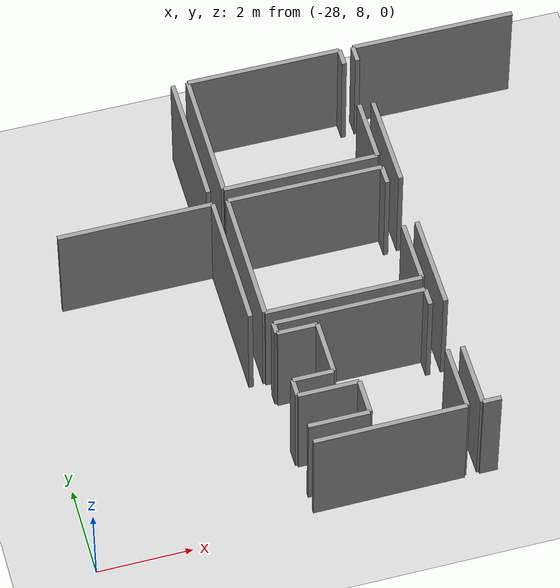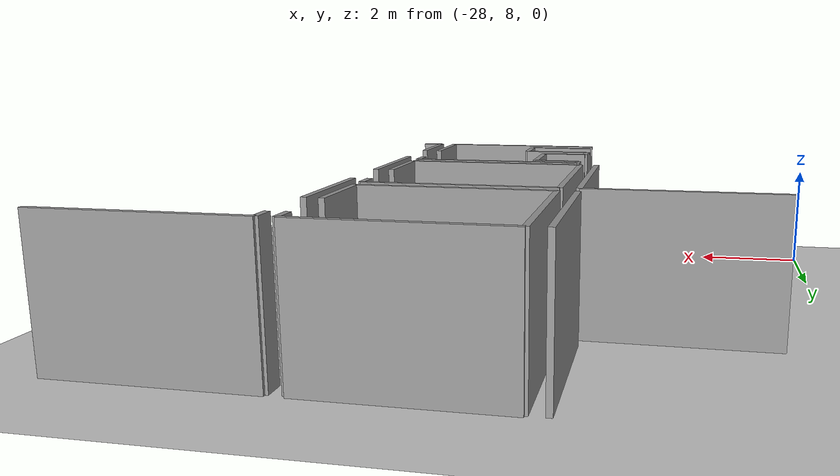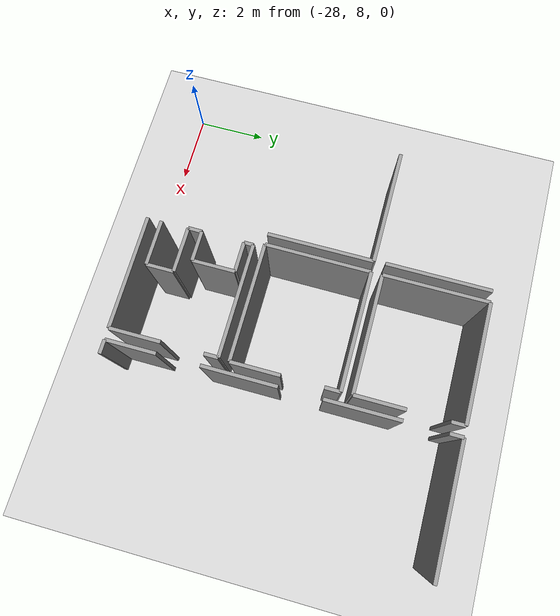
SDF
<sdf version="1.6">
 <world name="default">
  <model name="ground_plane">
   <static>1</static>
   <link name="link">
    <collision name="collision">
     <geometry><plane><normal>0 0 1</normal><size>100 100</size></plane></geometry>
     <surface><friction><ode><mu>100</mu><mu2>50</mu2></ode></friction></surface>
    </collision>
    <visual name="visual">
     <cast_shadows>0</cast_shadows>
     <geometry><plane><normal>0 0 1</normal><size>100 100</size></plane></geometry>
     <material>
      <script><uri>file://media/materials/scripts/gazebo.material</uri><name>Gazebo/Grey</name></script>
     </material>
    </visual>
   </link>
  </model>
  <model name="50052748">
   <static>1</static>
   <link name="Wall_74">
    <collision name="Wall_74_Collision">
     <geometry><box><size>1.40050196385 0.1 2.5</size></box></geometry>
     <pose>0.700250981924 0 1.25 0 0 0</pose>
    </collision>
    <visual name="Wall_74_Visual">
     <pose>0.700250981924 0 1.25 0 0 0</pose>
     <geometry><box><size>1.40050196385 0.1 2.5</size></box></geometry>
     <material>
      <script><uri>file://media/materials/scripts/gazebo.material</uri><name>Gazebo/Grey</name></script>
      <ambient>1 1 1 1</ambient>
     </material>
    </visual>
    <pose>22.6342829387 -13.2154221354 0 0 0 1.57079632679</pose>
   </link>
   <link name="Wall_75">
    <collision name="Wall_75_Collision">
     <geometry><box><size>2.07139351404 0.1 2.5</size></box></geometry>
     <pose>1.03569675702 0 1.25 0 0 0</pose>
    </collision>
    <visual name="Wall_75_Visual">
     <pose>1.03569675702 0 1.25 0 0 0</pose>
     <geometry><box><size>2.07139351404 0.1 2.5</size></box></geometry>
     <material>
      <script><uri>file://media/materials/scripts/gazebo.material</uri><name>Gazebo/Grey</name></script>
      <ambient>1 1 1 1</ambient>
     </material>
    </visual>
    <pose>22.6342829387 -10.6349627078 0 0 0 1.57079632679</pose>
   </link>
   <link name="Wall_76">
    <collision name="Wall_76_Collision">
     <geometry><box><size>2.06695472306 0.1 2.5</size></box></geometry>
     <pose>1.03347736153 0 1.25 0 0 0</pose>
    </collision>
    <visual name="Wall_76_Visual">
     <pose>1.03347736153 0 1.25 0 0 0</pose>
     <geometry><box><size>2.06695472306 0.1 2.5</size></box></geometry>
     <material>
      <script><uri>file://media/materials/scripts/gazebo.material</uri><name>Gazebo/Grey</name></script>
      <ambient>1 1 1 1</ambient>
     </material>
    </visual>
    <pose>22.6342829387 -7.39084061823 0 0 0 1.57079632679</pose>
   </link>
   <link name="Wall_77">
    <collision name="Wall_77_Collision">
     <geometry><box><size>0.367405070114 0.1 2.5</size></box></geometry>
     <pose>0.183702535057 0 1.25 0 0 0</pose>
    </collision>
    <visual name="Wall_77_Visual">
     <pose>0.183702535057 0 1.25 0 0 0</pose>
     <geometry><box><size>0.367405070114 0.1 2.5</size></box></geometry>
     <material>
      <script><uri>file://media/materials/scripts/gazebo.material</uri><name>Gazebo/Grey</name></script>
      <ambient>1 1 1 1</ambient>
     </material>
    </visual>
    <pose>22.6342829387 -4.14506983486 0 0 0 1.57079632679</pose>
   </link>
   <link name="Wall_78">
    <collision name="Wall_78_Collision">
     <geometry><box><size>3.5047425311 0.1 2.5</size></box></geometry>
     <pose>1.75237126555 0 1.25 0 0 0</pose>
    </collision>
    <visual name="Wall_78_Visual">
     <pose>1.75237126555 0 1.25 0 0 0</pose>
     <geometry><box><size>3.5047425311 0.1 2.5</size></box></geometry>
     <material>
      <script><uri>file://media/materials/scripts/gazebo.material</uri><name>Gazebo/Grey</name></script>
      <ambient>1 1 1 1</ambient>
     </material>
    </visual>
    <pose>22.6342829387 -3.77766476475 0 0 0 0.0</pose>
   </link>
   <link name="Wall_81">
    <collision name="Wall_81_Collision">
     <geometry><box><size>0.385925253917 0.1 2.5</size></box></geometry>
     <pose>0.192962626958 0 1.25 0 0 0</pose>
    </collision>
    <visual name="Wall_81_Visual">
     <pose>0.192962626958 0 1.25 0 0 0</pose>
     <geometry><box><size>0.385925253917 0.1 2.5</size></box></geometry>
     <material>
      <script><uri>file://media/materials/scripts/gazebo.material</uri><name>Gazebo/Grey</name></script>
      <ambient>1 1 1 1</ambient>
     </material>
    </visual>
    <pose>23.0202041083 -13.213646619 0 0 0 -3.13699196308</pose>
   </link>
   <link name="Wall_207">
    <collision name="Wall_207_Collision">
     <geometry><box><size>2.9052521043 0.1 2.5</size></box></geometry>
     <pose>1.45262605215 0 1.25 0 0 0</pose>
    </collision>
    <visual name="Wall_207_Visual">
     <pose>1.45262605215 0 1.25 0 0 0</pose>
     <geometry><box><size>2.9052521043 0.1 2.5</size></box></geometry>
     <material>
      <script><uri>file://media/materials/scripts/gazebo.material</uri><name>Gazebo/Grey</name></script>
      <ambient>1 1 1 1</ambient>
     </material>
    </visual>
    <pose>18.7101380718 -3.78248402352 0 0 0 -1.57079632679</pose>
   </link>
   <link name="Wall_210">
    <collision name="Wall_210_Collision">
     <geometry><box><size>2.95128870784 0.1 2.5</size></box></geometry>
     <pose>1.47564435392 0 1.25 0 0 0</pose>
    </collision>
    <visual name="Wall_210_Visual">
     <pose>1.47564435392 0 1.25 0 0 0</pose>
     <geometry><box><size>2.95128870784 0.1 2.5</size></box></geometry>
     <material>
      <script><uri>file://media/materials/scripts/gazebo.material</uri><name>Gazebo/Grey</name></script>
      <ambient>1 1 1 1</ambient>
     </material>
    </visual>
    <pose>18.7224398639 -9.95798367286 0 0 0 1.57079632679</pose>
   </link>
   <link name="Wall_211">
    <collision name="Wall_211_Collision">
     <geometry><box><size>3.28483214395 0.1 2.5</size></box></geometry>
     <pose>1.64241607197 0 1.25 0 0 0</pose>
    </collision>
    <visual name="Wall_211_Visual">
     <pose>1.64241607197 0 1.25 0 0 0</pose>
     <geometry><box><size>3.28483214395 0.1 2.5</size></box></geometry>
     <material>
      <script><uri>file://media/materials/scripts/gazebo.material</uri><name>Gazebo/Grey</name></script>
      <ambient>1 1 1 1</ambient>
     </material>
    </visual>
    <pose>18.7224398639 -7.00669496502 0 0 0 3.14159265359</pose>
   </link>
   <link name="Wall_227">
    <collision name="Wall_227_Collision">
     <geometry><box><size>2.91501744445 0.1 2.5</size></box></geometry>
     <pose>1.45750872222 0 1.25 0 0 0</pose>
    </collision>
    <visual name="Wall_227_Visual">
     <pose>1.45750872222 0 1.25 0 0 0</pose>
     <geometry><box><size>2.91501744445 0.1 2.5</size></box></geometry>
     <material>
      <script><uri>file://media/materials/scripts/gazebo.material</uri><name>Gazebo/Grey</name></script>
      <ambient>1 1 1 1</ambient>
     </material>
    </visual>
    <pose>19.0341698129 -6.69496501599 0 0 0 1.57079632679</pose>
   </link>
   <link name="Wall_228">
    <collision name="Wall_228_Collision">
     <geometry><box><size>3.30322142084 0.1 2.5</size></box></geometry>
     <pose>1.65161071042 0 1.25 0 0 0</pose>
    </collision>
    <visual name="Wall_228_Visual">
     <pose>1.65161071042 0 1.25 0 0 0</pose>
     <geometry><box><size>3.30322142084 0.1 2.5</size></box></geometry>
     <material>
      <script><uri>file://media/materials/scripts/gazebo.material</uri><name>Gazebo/Grey</name></script>
      <ambient>1 1 1 1</ambient>
     </material>
    </visual>
    <pose>19.0341698129 -3.77994757154 0 0 0 0.0</pose>
   </link>
   <link name="Wall_229">
    <collision name="Wall_229_Collision">
     <geometry><box><size>0.386174814807 0.1 2.5</size></box></geometry>
     <pose>0.193087407404 0 1.25 0 0 0</pose>
    </collision>
    <visual name="Wall_229_Visual">
     <pose>0.193087407404 0 1.25 0 0 0</pose>
     <geometry><box><size>0.386174814807 0.1 2.5</size></box></geometry>
     <material>
      <script><uri>file://media/materials/scripts/gazebo.material</uri><name>Gazebo/Grey</name></script>
      <ambient>1 1 1 1</ambient>
     </material>
    </visual>
    <pose>22.3373912338 -3.77994757154 0 0 0 -1.57079632679</pose>
   </link>
   <link name="Wall_230">
    <collision name="Wall_230_Collision">
     <geometry><box><size>1.39276578529 0.1 2.5</size></box></geometry>
     <pose>0.696382892646 0 1.25 0 0 0</pose>
    </collision>
    <visual name="Wall_230_Visual">
     <pose>0.696382892646 0 1.25 0 0 0</pose>
     <geometry><box><size>1.39276578529 0.1 2.5</size></box></geometry>
     <material>
      <script><uri>file://media/materials/scripts/gazebo.material</uri><name>Gazebo/Grey</name></script>
      <ambient>1 1 1 1</ambient>
     </material>
    </visual>
    <pose>22.3373912338 -5.29636539113 0 0 0 -1.57079632679</pose>
   </link>
   <link name="Wall_231">
    <collision name="Wall_231_Collision">
     <geometry><box><size>3.30322657243 0.1 2.5</size></box></geometry>
     <pose>1.65161328622 0 1.25 0 0 0</pose>
    </collision>
    <visual name="Wall_231_Visual">
     <pose>1.65161328622 0 1.25 0 0 0</pose>
     <geometry><box><size>3.30322657243 0.1 2.5</size></box></geometry>
     <material>
      <script><uri>file://media/materials/scripts/gazebo.material</uri><name>Gazebo/Grey</name></script>
      <ambient>1 1 1 1</ambient>
     </material>
    </visual>
    <pose>22.3373912338 -6.68913117642 0 0 0 -3.13982654931</pose>
   </link>
   <link name="Wall_232">
    <collision name="Wall_232_Collision">
     <geometry><box><size>3.31374769658 0.1 2.5</size></box></geometry>
     <pose>1.65687384829 0 1.25 0 0 0</pose>
    </collision>
    <visual name="Wall_232_Visual">
     <pose>1.65687384829 0 1.25 0 0 0</pose>
     <geometry><box><size>3.31374769658 0.1 2.5</size></box></geometry>
     <material>
      <script><uri>file://media/materials/scripts/gazebo.material</uri><name>Gazebo/Grey</name></script>
      <ambient>1 1 1 1</ambient>
     </material>
    </visual>
    <pose>19.0269409248 -9.94339907394 0 0 0 0.0</pose>
   </link>
   <link name="Wall_233">
    <collision name="Wall_233_Collision">
     <geometry><box><size>1.36321611966 0.1 2.5</size></box></geometry>
     <pose>0.68160805983 0 1.25 0 0 0</pose>
    </collision>
    <visual name="Wall_233_Visual">
     <pose>0.68160805983 0 1.25 0 0 0</pose>
     <geometry><box><size>1.36321611966 0.1 2.5</size></box></geometry>
     <material>
      <script><uri>file://media/materials/scripts/gazebo.material</uri><name>Gazebo/Grey</name></script>
      <ambient>1 1 1 1</ambient>
     </material>
    </visual>
    <pose>22.3406886213 -9.94339907394 0 0 0 1.57079632679</pose>
   </link>
   <link name="Wall_234">
    <collision name="Wall_234_Collision">
     <geometry><box><size>0.425362997985 0.1 2.5</size></box></geometry>
     <pose>0.212681498992 0 1.25 0 0 0</pose>
    </collision>
    <visual name="Wall_234_Visual">
     <pose>0.212681498992 0 1.25 0 0 0</pose>
     <geometry><box><size>0.425362997985 0.1 2.5</size></box></geometry>
     <material>
      <script><uri>file://media/materials/scripts/gazebo.material</uri><name>Gazebo/Grey</name></script>
      <ambient>1 1 1 1</ambient>
     </material>
    </visual>
    <pose>22.3406886213 -7.42660459123 0 0 0 1.57079632679</pose>
   </link>
   <link name="Wall_235">
    <collision name="Wall_235_Collision">
     <geometry><box><size>3.30537740503 0.1 2.5</size></box></geometry>
     <pose>1.65268870252 0 1.25 0 0 0</pose>
    </collision>
    <visual name="Wall_235_Visual">
     <pose>1.65268870252 0 1.25 0 0 0</pose>
     <geometry><box><size>3.30537740503 0.1 2.5</size></box></geometry>
     <material>
      <script><uri>file://media/materials/scripts/gazebo.material</uri><name>Gazebo/Grey</name></script>
      <ambient>1 1 1 1</ambient>
     </material>
    </visual>
    <pose>22.3406886213 -7.00124159325 0 0 0 3.14159265359</pose>
   </link>
   <link name="Wall_236">
    <collision name="Wall_236_Collision">
     <geometry><box><size>2.9421693872 0.1 2.5</size></box></geometry>
     <pose>1.4710846936 0 1.25 0 0 0</pose>
    </collision>
    <visual name="Wall_236_Visual">
     <pose>1.4710846936 0 1.25 0 0 0</pose>
     <geometry><box><size>2.9421693872 0.1 2.5</size></box></geometry>
     <material>
      <script><uri>file://media/materials/scripts/gazebo.material</uri><name>Gazebo/Grey</name></script>
      <ambient>1 1 1 1</ambient>
     </material>
    </visual>
    <pose>19.0353112163 -7.00124159325 0 0 0 -1.57364126933</pose>
   </link>
   <link name="Wall_238">
    <collision name="Wall_238_Collision">
     <geometry><box><size>1.28344470471 0.1 2.5</size></box></geometry>
     <pose>0.641722352356 0 1.25 0 0 0</pose>
    </collision>
    <visual name="Wall_238_Visual">
     <pose>0.641722352356 0 1.25 0 0 0</pose>
     <geometry><box><size>1.28344470471 0.1 2.5</size></box></geometry>
     <material>
      <script><uri>file://media/materials/scripts/gazebo.material</uri><name>Gazebo/Grey</name></script>
      <ambient>1 1 1 1</ambient>
     </material>
    </visual>
    <pose>19.121170116 -12.8511876302 0 0 0 0.0</pose>
   </link>
   <link name="Wall_239">
    <collision name="Wall_239_Collision">
     <geometry><box><size>0.768671774235 0.1 2.5</size></box></geometry>
     <pose>0.384335887118 0 1.25 0 0 0</pose>
    </collision>
    <visual name="Wall_239_Visual">
     <pose>0.384335887118 0 1.25 0 0 0</pose>
     <geometry><box><size>0.768671774235 0.1 2.5</size></box></geometry>
     <material>
      <script><uri>file://media/materials/scripts/gazebo.material</uri><name>Gazebo/Grey</name></script>
      <ambient>1 1 1 1</ambient>
     </material>
    </visual>
    <pose>20.4046148207 -12.8511876302 0 0 0 1.57079632679</pose>
   </link>
   <link name="Wall_240">
    <collision name="Wall_240_Collision">
     <geometry><box><size>1.28065460753 0.1 2.5</size></box></geometry>
     <pose>0.640327303764 0 1.25 0 0 0</pose>
    </collision>
    <visual name="Wall_240_Visual">
     <pose>0.640327303764 0 1.25 0 0 0</pose>
     <geometry><box><size>1.28065460753 0.1 2.5</size></box></geometry>
     <material>
      <script><uri>file://media/materials/scripts/gazebo.material</uri><name>Gazebo/Grey</name></script>
      <ambient>1 1 1 1</ambient>
     </material>
    </visual>
    <pose>20.4046148207 -12.082515856 0 0 0 3.14159265359</pose>
   </link>
   <link name="Wall_241">
    <collision name="Wall_241_Collision">
     <geometry><box><size>0.381862846432 0.1 2.5</size></box></geometry>
     <pose>0.190931423216 0 1.25 0 0 0</pose>
    </collision>
    <visual name="Wall_241_Visual">
     <pose>0.190931423216 0 1.25 0 0 0</pose>
     <geometry><box><size>0.381862846432 0.1 2.5</size></box></geometry>
     <material>
      <script><uri>file://media/materials/scripts/gazebo.material</uri><name>Gazebo/Grey</name></script>
      <ambient>1 1 1 1</ambient>
     </material>
    </visual>
    <pose>19.1239602132 -12.082515856 0 0 0 1.57079632679</pose>
   </link>
   <link name="Wall_242">
    <collision name="Wall_242_Collision">
     <geometry><box><size>0.854403851349 0.1 2.5</size></box></geometry>
     <pose>0.427201925674 0 1.25 0 0 0</pose>
    </collision>
    <visual name="Wall_242_Visual">
     <pose>0.427201925674 0 1.25 0 0 0</pose>
     <geometry><box><size>0.854403851349 0.1 2.5</size></box></geometry>
     <material>
      <script><uri>file://media/materials/scripts/gazebo.material</uri><name>Gazebo/Grey</name></script>
      <ambient>1 1 1 1</ambient>
     </material>
    </visual>
    <pose>19.1239602132 -11.7006530096 0 0 0 0.0</pose>
   </link>
   <link name="Wall_243">
    <collision name="Wall_243_Collision">
     <geometry><box><size>1.1968248694 0.1 2.5</size></box></geometry>
     <pose>0.598412434702 0 1.25 0 0 0</pose>
    </collision>
    <visual name="Wall_243_Visual">
     <pose>0.598412434702 0 1.25 0 0 0</pose>
     <geometry><box><size>1.1968248694 0.1 2.5</size></box></geometry>
     <material>
      <script><uri>file://media/materials/scripts/gazebo.material</uri><name>Gazebo/Grey</name></script>
      <ambient>1 1 1 1</ambient>
     </material>
    </visual>
    <pose>19.9783640646 -11.7006530096 0 0 0 1.57079632679</pose>
   </link>
   <link name="Wall_244">
    <collision name="Wall_244_Collision">
     <geometry><box><size>0.85072599597 0.1 2.5</size></box></geometry>
     <pose>0.425362997985 0 1.25 0 0 0</pose>
    </collision>
    <visual name="Wall_244_Visual">
     <pose>0.425362997985 0 1.25 0 0 0</pose>
     <geometry><box><size>0.85072599597 0.1 2.5</size></box></geometry>
     <material>
      <script><uri>file://media/materials/scripts/gazebo.material</uri><name>Gazebo/Grey</name></script>
      <ambient>1 1 1 1</ambient>
     </material>
    </visual>
    <pose>19.9783640646 -10.5038281402 0 0 0 3.14159265359</pose>
   </link>
   <link name="Wall_245">
    <collision name="Wall_245_Collision">
     <geometry><box><size>0.259605860726 0.1 2.5</size></box></geometry>
     <pose>0.129802930363 0 1.25 0 0 0</pose>
    </collision>
    <visual name="Wall_245_Visual">
     <pose>0.129802930363 0 1.25 0 0 0</pose>
     <geometry><box><size>0.259605860726 0.1 2.5</size></box></geometry>
     <material>
      <script><uri>file://media/materials/scripts/gazebo.material</uri><name>Gazebo/Grey</name></script>
      <ambient>1 1 1 1</ambient>
     </material>
    </visual>
    <pose>19.1276380686 -10.5038281402 0 0 0 1.57079632679</pose>
   </link>
   <link name="Wall_246">
    <collision name="Wall_246_Collision">
     <geometry><box><size>3.18920790409 0.1 2.5</size></box></geometry>
     <pose>1.59460395205 0 1.25 0 0 0</pose>
    </collision>
    <visual name="Wall_246_Visual">
     <pose>1.59460395205 0 1.25 0 0 0</pose>
     <geometry><box><size>3.18920790409 0.1 2.5</size></box></geometry>
     <material>
      <script><uri>file://media/materials/scripts/gazebo.material</uri><name>Gazebo/Grey</name></script>
      <ambient>1 1 1 1</ambient>
     </material>
    </visual>
    <pose>19.1276380686 -10.2442222794 0 0 0 0.0</pose>
   </link>
   <link name="Wall_247">
    <collision name="Wall_247_Collision">
     <geometry><box><size>0.390486783183 0.1 2.5</size></box></geometry>
     <pose>0.195243391591 0 1.25 0 0 0</pose>
    </collision>
    <visual name="Wall_247_Visual">
     <pose>0.195243391591 0 1.25 0 0 0</pose>
     <geometry><box><size>0.390486783183 0.1 2.5</size></box></geometry>
     <material>
      <script><uri>file://media/materials/scripts/gazebo.material</uri><name>Gazebo/Grey</name></script>
      <ambient>1 1 1 1</ambient>
     </material>
    </visual>
    <pose>22.3168459727 -10.2442222794 0 0 0 -1.57079632679</pose>
   </link>
   <link name="Wall_248">
    <collision name="Wall_248_Collision">
     <geometry><box><size>1.41432562717 0.1 2.5</size></box></geometry>
     <pose>0.707162813585 0 1.25 0 0 0</pose>
    </collision>
    <visual name="Wall_248_Visual">
     <pose>0.707162813585 0 1.25 0 0 0</pose>
     <geometry><box><size>1.41432562717 0.1 2.5</size></box></geometry>
     <material>
      <script><uri>file://media/materials/scripts/gazebo.material</uri><name>Gazebo/Grey</name></script>
      <ambient>1 1 1 1</ambient>
     </material>
    </visual>
    <pose>22.3168459727 -11.80654988 0 0 0 -1.57079632679</pose>
   </link>
   <link name="Wall_249">
    <collision name="Wall_249_Collision">
     <geometry><box><size>3.19575030455 0.1 2.5</size></box></geometry>
     <pose>1.59787515227 0 1.25 0 0 0</pose>
    </collision>
    <visual name="Wall_249_Visual">
     <pose>1.59787515227 0 1.25 0 0 0</pose>
     <geometry><box><size>3.19575030455 0.1 2.5</size></box></geometry>
     <material>
      <script><uri>file://media/materials/scripts/gazebo.material</uri><name>Gazebo/Grey</name></script>
      <ambient>1 1 1 1</ambient>
     </material>
    </visual>
    <pose>22.3168459727 -13.2208755071 0 0 0 -3.13476682103</pose>
   </link>
   <pose>-42.55 21.5022460282 0 0 0 0</pose>
  </model>
 </world>
</sdf>
